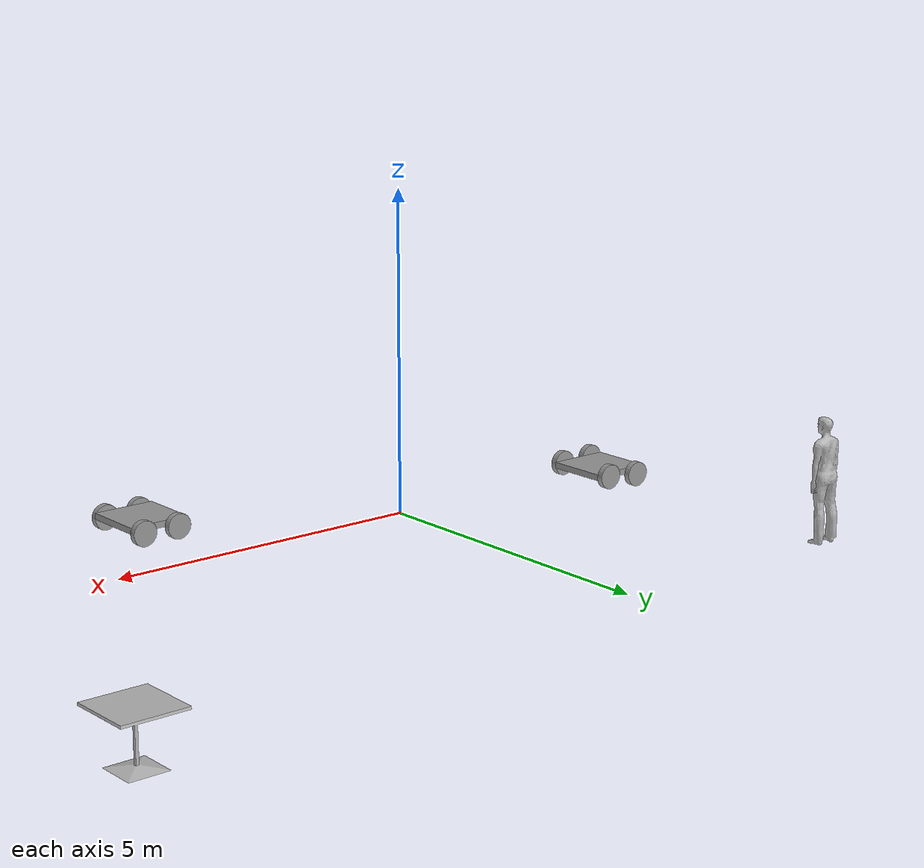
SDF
<?xml version='1.0'?>
<sdf version='1.6'>
  <model name='HumanoiRobot'>
    <link name='link_0'>
      <inertial>
        <mass>1</mass>
        <inertia>
          <ixx>0.166667</ixx>
          <ixy>0</ixy>
          <ixz>0</ixz>
          <iyy>0.166667</iyy>
          <iyz>0</iyz>
          <izz>0.166667</izz>
        </inertia>
        <pose frame=''>0 0 0 0 -0 0</pose>
      </inertial>
      <pose frame=''>-4.05276 0.106449 0.058335 0 -0 0</pose>
      <gravity>1</gravity>
      <self_collide>0</self_collide>
      <kinematic>0</kinematic>
      <enable_wind>0</enable_wind>
      <visual name='visual'>
        <pose frame=''>0 0 0 0 -0 0</pose>
        <geometry>
          <box>
            <size>1 1 0.1</size>
          </box>
        </geometry>
        <material>
          <lighting>1</lighting>
          <script>
            <uri>file://media/materials/scripts/gazebo.material</uri>
            <name>Gazebo/Grey</name>
          </script>
          <shader type='pixel'>
            <normal_map>__default__</normal_map>
          </shader>
          <ambient>0.3 0.3 0.3 1</ambient>
          <diffuse>0.7 0.7 0.7 1</diffuse>
          <specular>0.01 0.01 0.01 1</specular>
          <emissive>0 0 0 1</emissive>
        </material>
        <transparency>0</transparency>
        <cast_shadows>1</cast_shadows>
      </visual>
      <collision name='collision'>
        <laser_retro>0</laser_retro>
        <max_contacts>10</max_contacts>
        <pose frame=''>0 0 0 0 -0 0</pose>
        <geometry>
          <box>
            <size>1 1 0.1</size>
          </box>
        </geometry>
        <surface>
          <friction>
            <ode>
              <mu>1</mu>
              <mu2>1</mu2>
              <fdir1>0 0 0</fdir1>
              <slip1>0</slip1>
              <slip2>0</slip2>
            </ode>
            <torsional>
              <coefficient>1</coefficient>
              <patch_radius>0</patch_radius>
              <surface_radius>0</surface_radius>
              <use_patch_radius>1</use_patch_radius>
              <ode>
                <slip>0</slip>
              </ode>
            </torsional>
          </friction>
          <bounce>
            <restitution_coefficient>0</restitution_coefficient>
            <threshold>1e+06</threshold>
          </bounce>
          <contact>
            <collide_without_contact>0</collide_without_contact>
            <collide_without_contact_bitmask>1</collide_without_contact_bitmask>
            <collide_bitmask>1</collide_bitmask>
            <ode>
              <soft_cfm>0</soft_cfm>
              <soft_erp>0.2</soft_erp>
              <kp>1e+13</kp>
              <kd>1</kd>
              <max_vel>0.01</max_vel>
              <min_depth>0</min_depth>
            </ode>
            <bullet>
              <split_impulse>1</split_impulse>
              <split_impulse_penetration_threshold>-0.01</split_impulse_penetration_threshold>
              <soft_cfm>0</soft_cfm>
              <soft_erp>0.2</soft_erp>
              <kp>1e+13</kp>
              <kd>1</kd>
            </bullet>
          </contact>
        </surface>
      </collision>
    </link>
    <link name='link_0_clone'>
      <inertial>
        <mass>1</mass>
        <inertia>
          <ixx>0.166667</ixx>
          <ixy>0</ixy>
          <ixz>0</ixz>
          <iyy>0.166667</iyy>
          <iyz>0</iyz>
          <izz>0.166667</izz>
        </inertia>
        <pose frame=''>0 0 0 0 -0 0</pose>
      </inertial>
      <pose frame=''>3.25264 -2.202 0.058335 0 -0 0</pose>
      <gravity>1</gravity>
      <self_collide>0</self_collide>
      <kinematic>0</kinematic>
      <enable_wind>0</enable_wind>
      <visual name='visual'>
        <pose frame=''>0 0 0 0 -0 0</pose>
        <geometry>
          <box>
            <size>1 1 0.1</size>
          </box>
        </geometry>
        <material>
          <lighting>1</lighting>
          <script>
            <uri>file://media/materials/scripts/gazebo.material</uri>
            <name>Gazebo/Grey</name>
          </script>
          <shader type='pixel'>
            <normal_map>__default__</normal_map>
          </shader>
          <ambient>0.3 0.3 0.3 1</ambient>
          <diffuse>0.7 0.7 0.7 1</diffuse>
          <specular>0.01 0.01 0.01 1</specular>
          <emissive>0 0 0 1</emissive>
        </material>
        <transparency>0</transparency>
        <cast_shadows>1</cast_shadows>
      </visual>
      <collision name='collision'>
        <laser_retro>0</laser_retro>
        <max_contacts>10</max_contacts>
        <pose frame=''>0 0 0 0 -0 0</pose>
        <geometry>
          <box>
            <size>1 1 0.1</size>
          </box>
        </geometry>
        <surface>
          <friction>
            <ode>
              <mu>1</mu>
              <mu2>1</mu2>
              <fdir1>0 0 0</fdir1>
              <slip1>0</slip1>
              <slip2>0</slip2>
            </ode>
            <torsional>
              <coefficient>1</coefficient>
              <patch_radius>0</patch_radius>
              <surface_radius>0</surface_radius>
              <use_patch_radius>1</use_patch_radius>
              <ode>
                <slip>0</slip>
              </ode>
            </torsional>
          </friction>
          <bounce>
            <restitution_coefficient>0</restitution_coefficient>
            <threshold>1e+06</threshold>
          </bounce>
          <contact>
            <collide_without_contact>0</collide_without_contact>
            <collide_without_contact_bitmask>1</collide_without_contact_bitmask>
            <collide_bitmask>1</collide_bitmask>
            <ode>
              <soft_cfm>0</soft_cfm>
              <soft_erp>0.2</soft_erp>
              <kp>1e+13</kp>
              <kd>1</kd>
              <max_vel>0.01</max_vel>
              <min_depth>0</min_depth>
            </ode>
            <bullet>
              <split_impulse>1</split_impulse>
              <split_impulse_penetration_threshold>-0.01</split_impulse_penetration_threshold>
              <soft_cfm>0</soft_cfm>
              <soft_erp>0.2</soft_erp>
              <kp>1e+13</kp>
              <kd>1</kd>
            </bullet>
          </contact>
        </surface>
      </collision>
    </link>
    <link name='link_1'>
      <inertial>
        <mass>1</mass>
        <inertia>
          <ixx>0.145833</ixx>
          <ixy>0</ixy>
          <ixz>0</ixz>
          <iyy>0.145833</iyy>
          <iyz>0</iyz>
          <izz>0.125</izz>
        </inertia>
        <pose frame=''>0 0 0 0 -0 0</pose>
      </inertial>
      <pose frame=''>-4.35276 -0.44357 0.058335 1.5707 -0 0</pose>
      <gravity>1</gravity>
      <self_collide>0</self_collide>
      <kinematic>0</kinematic>
      <enable_wind>0</enable_wind>
      <visual name='visual'>
        <pose frame=''>0 0 0 0 -0 0</pose>
        <geometry>
          <cylinder>
            <radius>0.2</radius>
            <length>0.1</length>
          </cylinder>
        </geometry>
        <material>
          <lighting>1</lighting>
          <script>
            <uri>file://media/materials/scripts/gazebo.material</uri>
            <name>Gazebo/Grey</name>
          </script>
          <shader type='pixel'>
            <normal_map>__default__</normal_map>
          </shader>
          <ambient>0.3 0.3 0.3 1</ambient>
          <diffuse>0.7 0.7 0.7 1</diffuse>
          <specular>0.01 0.01 0.01 1</specular>
          <emissive>0 0 0 1</emissive>
        </material>
        <transparency>0</transparency>
        <cast_shadows>1</cast_shadows>
      </visual>
      <collision name='collision'>
        <laser_retro>0</laser_retro>
        <max_contacts>10</max_contacts>
        <pose frame=''>0 0 0 0 -0 0</pose>
        <geometry>
          <cylinder>
            <radius>0.2</radius>
            <length>0.1</length>
          </cylinder>
        </geometry>
        <surface>
          <friction>
            <ode>
              <mu>1</mu>
              <mu2>1</mu2>
              <fdir1>0 0 0</fdir1>
              <slip1>0</slip1>
              <slip2>0</slip2>
            </ode>
            <torsional>
              <coefficient>1</coefficient>
              <patch_radius>0</patch_radius>
              <surface_radius>0</surface_radius>
              <use_patch_radius>1</use_patch_radius>
              <ode>
                <slip>0</slip>
              </ode>
            </torsional>
          </friction>
          <bounce>
            <restitution_coefficient>0</restitution_coefficient>
            <threshold>1e+06</threshold>
          </bounce>
          <contact>
            <collide_without_contact>0</collide_without_contact>
            <collide_without_contact_bitmask>1</collide_without_contact_bitmask>
            <collide_bitmask>1</collide_bitmask>
            <ode>
              <soft_cfm>0</soft_cfm>
              <soft_erp>0.2</soft_erp>
              <kp>1e+13</kp>
              <kd>1</kd>
              <max_vel>0.01</max_vel>
              <min_depth>0</min_depth>
            </ode>
            <bullet>
              <split_impulse>1</split_impulse>
              <split_impulse_penetration_threshold>-0.01</split_impulse_penetration_threshold>
              <soft_cfm>0</soft_cfm>
              <soft_erp>0.2</soft_erp>
              <kp>1e+13</kp>
              <kd>1</kd>
            </bullet>
          </contact>
        </surface>
      </collision>
    </link>
    <link name='link_1_clone'>
      <inertial>
        <mass>1</mass>
        <inertia>
          <ixx>0.145833</ixx>
          <ixy>0</ixy>
          <ixz>0</ixz>
          <iyy>0.145833</iyy>
          <iyz>0</iyz>
          <izz>0.125</izz>
        </inertia>
        <pose frame=''>0 0 0 0 -0 0</pose>
      </inertial>
      <pose frame=''>-3.75276 0.656468 0.058335 1.5707 -0 0</pose>
      <gravity>1</gravity>
      <self_collide>0</self_collide>
      <kinematic>0</kinematic>
      <enable_wind>0</enable_wind>
      <visual name='visual'>
        <pose frame=''>0 0 0 0 -0 0</pose>
        <geometry>
          <cylinder>
            <radius>0.2</radius>
            <length>0.1</length>
          </cylinder>
        </geometry>
        <material>
          <lighting>1</lighting>
          <script>
            <uri>file://media/materials/scripts/gazebo.material</uri>
            <name>Gazebo/Grey</name>
          </script>
          <shader type='pixel'>
            <normal_map>__default__</normal_map>
          </shader>
          <ambient>0.3 0.3 0.3 1</ambient>
          <diffuse>0.7 0.7 0.7 1</diffuse>
          <specular>0.01 0.01 0.01 1</specular>
          <emissive>0 0 0 1</emissive>
        </material>
        <transparency>0</transparency>
        <cast_shadows>1</cast_shadows>
      </visual>
      <collision name='collision'>
        <laser_retro>0</laser_retro>
        <max_contacts>10</max_contacts>
        <pose frame=''>0 0 0 0 -0 0</pose>
        <geometry>
          <cylinder>
            <radius>0.2</radius>
            <length>0.1</length>
          </cylinder>
        </geometry>
        <surface>
          <friction>
            <ode>
              <mu>1</mu>
              <mu2>1</mu2>
              <fdir1>0 0 0</fdir1>
              <slip1>0</slip1>
              <slip2>0</slip2>
            </ode>
            <torsional>
              <coefficient>1</coefficient>
              <patch_radius>0</patch_radius>
              <surface_radius>0</surface_radius>
              <use_patch_radius>1</use_patch_radius>
              <ode>
                <slip>0</slip>
              </ode>
            </torsional>
          </friction>
          <bounce>
            <restitution_coefficient>0</restitution_coefficient>
            <threshold>1e+06</threshold>
          </bounce>
          <contact>
            <collide_without_contact>0</collide_without_contact>
            <collide_without_contact_bitmask>1</collide_without_contact_bitmask>
            <collide_bitmask>1</collide_bitmask>
            <ode>
              <soft_cfm>0</soft_cfm>
              <soft_erp>0.2</soft_erp>
              <kp>1e+13</kp>
              <kd>1</kd>
              <max_vel>0.01</max_vel>
              <min_depth>0</min_depth>
            </ode>
            <bullet>
              <split_impulse>1</split_impulse>
              <split_impulse_penetration_threshold>-0.01</split_impulse_penetration_threshold>
              <soft_cfm>0</soft_cfm>
              <soft_erp>0.2</soft_erp>
              <kp>1e+13</kp>
              <kd>1</kd>
            </bullet>
          </contact>
        </surface>
      </collision>
    </link>
    <link name='link_1_clone_0'>
      <inertial>
        <mass>1</mass>
        <inertia>
          <ixx>0.145833</ixx>
          <ixy>0</ixy>
          <ixz>0</ixz>
          <iyy>0.145833</iyy>
          <iyz>0</iyz>
          <izz>0.125</izz>
        </inertia>
        <pose frame=''>0 0 0 0 -0 0</pose>
      </inertial>
      <pose frame=''>-3.75276 -0.44357 0.058335 1.5707 -0 0</pose>
      <gravity>1</gravity>
      <self_collide>0</self_collide>
      <kinematic>0</kinematic>
      <enable_wind>0</enable_wind>
      <visual name='visual'>
        <pose frame=''>0 0 0 0 -0 0</pose>
        <geometry>
          <cylinder>
            <radius>0.2</radius>
            <length>0.1</length>
          </cylinder>
        </geometry>
        <material>
          <lighting>1</lighting>
          <script>
            <uri>file://media/materials/scripts/gazebo.material</uri>
            <name>Gazebo/Grey</name>
          </script>
          <shader type='pixel'>
            <normal_map>__default__</normal_map>
          </shader>
          <ambient>0.3 0.3 0.3 1</ambient>
          <diffuse>0.7 0.7 0.7 1</diffuse>
          <specular>0.01 0.01 0.01 1</specular>
          <emissive>0 0 0 1</emissive>
        </material>
        <transparency>0</transparency>
        <cast_shadows>1</cast_shadows>
      </visual>
      <collision name='collision'>
        <laser_retro>0</laser_retro>
        <max_contacts>10</max_contacts>
        <pose frame=''>0 0 0 0 -0 0</pose>
        <geometry>
          <cylinder>
            <radius>0.2</radius>
            <length>0.1</length>
          </cylinder>
        </geometry>
        <surface>
          <friction>
            <ode>
              <mu>1</mu>
              <mu2>1</mu2>
              <fdir1>0 0 0</fdir1>
              <slip1>0</slip1>
              <slip2>0</slip2>
            </ode>
            <torsional>
              <coefficient>1</coefficient>
              <patch_radius>0</patch_radius>
              <surface_radius>0</surface_radius>
              <use_patch_radius>1</use_patch_radius>
              <ode>
                <slip>0</slip>
              </ode>
            </torsional>
          </friction>
          <bounce>
            <restitution_coefficient>0</restitution_coefficient>
            <threshold>1e+06</threshold>
          </bounce>
          <contact>
            <collide_without_contact>0</collide_without_contact>
            <collide_without_contact_bitmask>1</collide_without_contact_bitmask>
            <collide_bitmask>1</collide_bitmask>
            <ode>
              <soft_cfm>0</soft_cfm>
              <soft_erp>0.2</soft_erp>
              <kp>1e+13</kp>
              <kd>1</kd>
              <max_vel>0.01</max_vel>
              <min_depth>0</min_depth>
            </ode>
            <bullet>
              <split_impulse>1</split_impulse>
              <split_impulse_penetration_threshold>-0.01</split_impulse_penetration_threshold>
              <soft_cfm>0</soft_cfm>
              <soft_erp>0.2</soft_erp>
              <kp>1e+13</kp>
              <kd>1</kd>
            </bullet>
          </contact>
        </surface>
      </collision>
    </link>
    <link name='link_1_clone_1'>
      <inertial>
        <mass>1</mass>
        <inertia>
          <ixx>0.145833</ixx>
          <ixy>0</ixy>
          <ixz>0</ixz>
          <iyy>0.145833</iyy>
          <iyz>0</iyz>
          <izz>0.125</izz>
        </inertia>
        <pose frame=''>0 0 0 0 -0 0</pose>
      </inertial>
      <pose frame=''>-4.35276 0.656468 -0.001669 1.5707 -0 0</pose>
      <gravity>1</gravity>
      <self_collide>0</self_collide>
      <kinematic>0</kinematic>
      <enable_wind>0</enable_wind>
      <visual name='visual'>
        <pose frame=''>0 0 0 0 -0 0</pose>
        <geometry>
          <cylinder>
            <radius>0.2</radius>
            <length>0.1</length>
          </cylinder>
        </geometry>
        <material>
          <lighting>1</lighting>
          <script>
            <uri>file://media/materials/scripts/gazebo.material</uri>
            <name>Gazebo/Grey</name>
          </script>
          <shader type='pixel'>
            <normal_map>__default__</normal_map>
          </shader>
          <ambient>0.3 0.3 0.3 1</ambient>
          <diffuse>0.7 0.7 0.7 1</diffuse>
          <specular>0.01 0.01 0.01 1</specular>
          <emissive>0 0 0 1</emissive>
        </material>
        <transparency>0</transparency>
        <cast_shadows>1</cast_shadows>
      </visual>
      <collision name='collision'>
        <laser_retro>0</laser_retro>
        <max_contacts>10</max_contacts>
        <pose frame=''>0 0 0 0 -0 0</pose>
        <geometry>
          <cylinder>
            <radius>0.2</radius>
            <length>0.1</length>
          </cylinder>
        </geometry>
        <surface>
          <friction>
            <ode>
              <mu>1</mu>
              <mu2>1</mu2>
              <fdir1>0 0 0</fdir1>
              <slip1>0</slip1>
              <slip2>0</slip2>
            </ode>
            <torsional>
              <coefficient>1</coefficient>
              <patch_radius>0</patch_radius>
              <surface_radius>0</surface_radius>
              <use_patch_radius>1</use_patch_radius>
              <ode>
                <slip>0</slip>
              </ode>
            </torsional>
          </friction>
          <bounce>
            <restitution_coefficient>0</restitution_coefficient>
            <threshold>1e+06</threshold>
          </bounce>
          <contact>
            <collide_without_contact>0</collide_without_contact>
            <collide_without_contact_bitmask>1</collide_without_contact_bitmask>
            <collide_bitmask>1</collide_bitmask>
            <ode>
              <soft_cfm>0</soft_cfm>
              <soft_erp>0.2</soft_erp>
              <kp>1e+13</kp>
              <kd>1</kd>
              <max_vel>0.01</max_vel>
              <min_depth>0</min_depth>
            </ode>
            <bullet>
              <split_impulse>1</split_impulse>
              <split_impulse_penetration_threshold>-0.01</split_impulse_penetration_threshold>
              <soft_cfm>0</soft_cfm>
              <soft_erp>0.2</soft_erp>
              <kp>1e+13</kp>
              <kd>1</kd>
            </bullet>
          </contact>
        </surface>
      </collision>
    </link>
    <link name='link_1_clone_1_clone_clone'>
      <inertial>
        <mass>1</mass>
        <inertia>
          <ixx>0.145833</ixx>
          <ixy>0</ixy>
          <ixz>0</ixz>
          <iyy>0.145833</iyy>
          <iyz>0</iyz>
          <izz>0.125</izz>
        </inertia>
        <pose frame=''>0 0 0 0 -0 0</pose>
      </inertial>
      <pose frame=''>3.55264 -2.75202 -0.00167 1.5707 -0 0</pose>
      <gravity>1</gravity>
      <self_collide>0</self_collide>
      <kinematic>0</kinematic>
      <enable_wind>0</enable_wind>
      <visual name='visual'>
        <pose frame=''>0 0 0 0 -0 0</pose>
        <geometry>
          <cylinder>
            <radius>0.2</radius>
            <length>0.1</length>
          </cylinder>
        </geometry>
        <material>
          <lighting>1</lighting>
          <script>
            <uri>file://media/materials/scripts/gazebo.material</uri>
            <name>Gazebo/Grey</name>
          </script>
          <shader type='pixel'>
            <normal_map>__default__</normal_map>
          </shader>
          <ambient>0.3 0.3 0.3 1</ambient>
          <diffuse>0.7 0.7 0.7 1</diffuse>
          <specular>0.01 0.01 0.01 1</specular>
          <emissive>0 0 0 1</emissive>
        </material>
        <transparency>0</transparency>
        <cast_shadows>1</cast_shadows>
      </visual>
      <collision name='collision'>
        <laser_retro>0</laser_retro>
        <max_contacts>10</max_contacts>
        <pose frame=''>0 0 0 0 -0 0</pose>
        <geometry>
          <cylinder>
            <radius>0.2</radius>
            <length>0.1</length>
          </cylinder>
        </geometry>
        <surface>
          <friction>
            <ode>
              <mu>1</mu>
              <mu2>1</mu2>
              <fdir1>0 0 0</fdir1>
              <slip1>0</slip1>
              <slip2>0</slip2>
            </ode>
            <torsional>
              <coefficient>1</coefficient>
              <patch_radius>0</patch_radius>
              <surface_radius>0</surface_radius>
              <use_patch_radius>1</use_patch_radius>
              <ode>
                <slip>0</slip>
              </ode>
            </torsional>
          </friction>
          <bounce>
            <restitution_coefficient>0</restitution_coefficient>
            <threshold>1e+06</threshold>
          </bounce>
          <contact>
            <collide_without_contact>0</collide_without_contact>
            <collide_without_contact_bitmask>1</collide_without_contact_bitmask>
            <collide_bitmask>1</collide_bitmask>
            <ode>
              <soft_cfm>0</soft_cfm>
              <soft_erp>0.2</soft_erp>
              <kp>1e+13</kp>
              <kd>1</kd>
              <max_vel>0.01</max_vel>
              <min_depth>0</min_depth>
            </ode>
            <bullet>
              <split_impulse>1</split_impulse>
              <split_impulse_penetration_threshold>-0.01</split_impulse_penetration_threshold>
              <soft_cfm>0</soft_cfm>
              <soft_erp>0.2</soft_erp>
              <kp>1e+13</kp>
              <kd>1</kd>
            </bullet>
          </contact>
        </surface>
      </collision>
    </link>
    <link name='link_1_clone_1_clone_clone_0'>
      <inertial>
        <mass>1</mass>
        <inertia>
          <ixx>0.145833</ixx>
          <ixy>0</ixy>
          <ixz>0</ixz>
          <iyy>0.145833</iyy>
          <iyz>0</iyz>
          <izz>0.125</izz>
        </inertia>
        <pose frame=''>0 0 0 0 -0 0</pose>
      </inertial>
      <pose frame=''>2.95263 -2.75202 -0.00167 1.5707 -0 0</pose>
      <gravity>1</gravity>
      <self_collide>0</self_collide>
      <kinematic>0</kinematic>
      <enable_wind>0</enable_wind>
      <visual name='visual'>
        <pose frame=''>0 0 0 0 -0 0</pose>
        <geometry>
          <cylinder>
            <radius>0.2</radius>
            <length>0.1</length>
          </cylinder>
        </geometry>
        <material>
          <lighting>1</lighting>
          <script>
            <uri>file://media/materials/scripts/gazebo.material</uri>
            <name>Gazebo/Grey</name>
          </script>
          <shader type='pixel'>
            <normal_map>__default__</normal_map>
          </shader>
          <ambient>0.3 0.3 0.3 1</ambient>
          <diffuse>0.7 0.7 0.7 1</diffuse>
          <specular>0.01 0.01 0.01 1</specular>
          <emissive>0 0 0 1</emissive>
        </material>
        <transparency>0</transparency>
        <cast_shadows>1</cast_shadows>
      </visual>
      <collision name='collision'>
        <laser_retro>0</laser_retro>
        <max_contacts>10</max_contacts>
        <pose frame=''>0 0 0 0 -0 0</pose>
        <geometry>
          <cylinder>
            <radius>0.2</radius>
            <length>0.1</length>
          </cylinder>
        </geometry>
        <surface>
          <friction>
            <ode>
              <mu>1</mu>
              <mu2>1</mu2>
              <fdir1>0 0 0</fdir1>
              <slip1>0</slip1>
              <slip2>0</slip2>
            </ode>
            <torsional>
              <coefficient>1</coefficient>
              <patch_radius>0</patch_radius>
              <surface_radius>0</surface_radius>
              <use_patch_radius>1</use_patch_radius>
              <ode>
                <slip>0</slip>
              </ode>
            </torsional>
          </friction>
          <bounce>
            <restitution_coefficient>0</restitution_coefficient>
            <threshold>1e+06</threshold>
          </bounce>
          <contact>
            <collide_without_contact>0</collide_without_contact>
            <collide_without_contact_bitmask>1</collide_without_contact_bitmask>
            <collide_bitmask>1</collide_bitmask>
            <ode>
              <soft_cfm>0</soft_cfm>
              <soft_erp>0.2</soft_erp>
              <kp>1e+13</kp>
              <kd>1</kd>
              <max_vel>0.01</max_vel>
              <min_depth>0</min_depth>
            </ode>
            <bullet>
              <split_impulse>1</split_impulse>
              <split_impulse_penetration_threshold>-0.01</split_impulse_penetration_threshold>
              <soft_cfm>0</soft_cfm>
              <soft_erp>0.2</soft_erp>
              <kp>1e+13</kp>
              <kd>1</kd>
            </bullet>
          </contact>
        </surface>
      </collision>
    </link>
    <link name='link_1_clone_1_clone_clone_1'>
      <inertial>
        <mass>1</mass>
        <inertia>
          <ixx>0.145833</ixx>
          <ixy>0</ixy>
          <ixz>0</ixz>
          <iyy>0.145833</iyy>
          <iyz>0</iyz>
          <izz>0.125</izz>
        </inertia>
        <pose frame=''>0 0 0 0 -0 0</pose>
      </inertial>
      <pose frame=''>3.55264 -1.65198 -0.00167 1.5707 -0 0</pose>
      <gravity>1</gravity>
      <self_collide>0</self_collide>
      <kinematic>0</kinematic>
      <enable_wind>0</enable_wind>
      <visual name='visual'>
        <pose frame=''>0 0 0 0 -0 0</pose>
        <geometry>
          <cylinder>
            <radius>0.2</radius>
            <length>0.1</length>
          </cylinder>
        </geometry>
        <material>
          <lighting>1</lighting>
          <script>
            <uri>file://media/materials/scripts/gazebo.material</uri>
            <name>Gazebo/Grey</name>
          </script>
          <shader type='pixel'>
            <normal_map>__default__</normal_map>
          </shader>
          <ambient>0.3 0.3 0.3 1</ambient>
          <diffuse>0.7 0.7 0.7 1</diffuse>
          <specular>0.01 0.01 0.01 1</specular>
          <emissive>0 0 0 1</emissive>
        </material>
        <transparency>0</transparency>
        <cast_shadows>1</cast_shadows>
      </visual>
      <collision name='collision'>
        <laser_retro>0</laser_retro>
        <max_contacts>10</max_contacts>
        <pose frame=''>0 0 0 0 -0 0</pose>
        <geometry>
          <cylinder>
            <radius>0.2</radius>
            <length>0.1</length>
          </cylinder>
        </geometry>
        <surface>
          <friction>
            <ode>
              <mu>1</mu>
              <mu2>1</mu2>
              <fdir1>0 0 0</fdir1>
              <slip1>0</slip1>
              <slip2>0</slip2>
            </ode>
            <torsional>
              <coefficient>1</coefficient>
              <patch_radius>0</patch_radius>
              <surface_radius>0</surface_radius>
              <use_patch_radius>1</use_patch_radius>
              <ode>
                <slip>0</slip>
              </ode>
            </torsional>
          </friction>
          <bounce>
            <restitution_coefficient>0</restitution_coefficient>
            <threshold>1e+06</threshold>
          </bounce>
          <contact>
            <collide_without_contact>0</collide_without_contact>
            <collide_without_contact_bitmask>1</collide_without_contact_bitmask>
            <collide_bitmask>1</collide_bitmask>
            <ode>
              <soft_cfm>0</soft_cfm>
              <soft_erp>0.2</soft_erp>
              <kp>1e+13</kp>
              <kd>1</kd>
              <max_vel>0.01</max_vel>
              <min_depth>0</min_depth>
            </ode>
            <bullet>
              <split_impulse>1</split_impulse>
              <split_impulse_penetration_threshold>-0.01</split_impulse_penetration_threshold>
              <soft_cfm>0</soft_cfm>
              <soft_erp>0.2</soft_erp>
              <kp>1e+13</kp>
              <kd>1</kd>
            </bullet>
          </contact>
        </surface>
      </collision>
    </link>
    <link name='link_1_clone_1_clone_clone_1_clone'>
      <inertial>
        <mass>1</mass>
        <inertia>
          <ixx>0.145833</ixx>
          <ixy>0</ixy>
          <ixz>0</ixz>
          <iyy>0.145833</iyy>
          <iyz>0</iyz>
          <izz>0.125</izz>
        </inertia>
        <pose frame=''>0 0 0 0 -0 0</pose>
      </inertial>
      <pose frame=''>2.95264 -1.65198 -0.00167 1.5707 -0 0</pose>
      <gravity>1</gravity>
      <self_collide>0</self_collide>
      <kinematic>0</kinematic>
      <enable_wind>0</enable_wind>
      <visual name='visual'>
        <pose frame=''>0 0 0 0 -0 0</pose>
        <geometry>
          <cylinder>
            <radius>0.2</radius>
            <length>0.1</length>
          </cylinder>
        </geometry>
        <material>
          <lighting>1</lighting>
          <script>
            <uri>file://media/materials/scripts/gazebo.material</uri>
            <name>Gazebo/Grey</name>
          </script>
          <shader type='pixel'>
            <normal_map>__default__</normal_map>
          </shader>
          <ambient>0.3 0.3 0.3 1</ambient>
          <diffuse>0.7 0.7 0.7 1</diffuse>
          <specular>0.01 0.01 0.01 1</specular>
          <emissive>0 0 0 1</emissive>
        </material>
        <transparency>0</transparency>
        <cast_shadows>1</cast_shadows>
      </visual>
      <collision name='collision'>
        <laser_retro>0</laser_retro>
        <max_contacts>10</max_contacts>
        <pose frame=''>0 0 0 0 -0 0</pose>
        <geometry>
          <cylinder>
            <radius>0.2</radius>
            <length>0.1</length>
          </cylinder>
        </geometry>
        <surface>
          <friction>
            <ode>
              <mu>1</mu>
              <mu2>1</mu2>
              <fdir1>0 0 0</fdir1>
              <slip1>0</slip1>
              <slip2>0</slip2>
            </ode>
            <torsional>
              <coefficient>1</coefficient>
              <patch_radius>0</patch_radius>
              <surface_radius>0</surface_radius>
              <use_patch_radius>1</use_patch_radius>
              <ode>
                <slip>0</slip>
              </ode>
            </torsional>
          </friction>
          <bounce>
            <restitution_coefficient>0</restitution_coefficient>
            <threshold>1e+06</threshold>
          </bounce>
          <contact>
            <collide_without_contact>0</collide_without_contact>
            <collide_without_contact_bitmask>1</collide_without_contact_bitmask>
            <collide_bitmask>1</collide_bitmask>
            <ode>
              <soft_cfm>0</soft_cfm>
              <soft_erp>0.2</soft_erp>
              <kp>1e+13</kp>
              <kd>1</kd>
              <max_vel>0.01</max_vel>
              <min_depth>0</min_depth>
            </ode>
            <bullet>
              <split_impulse>1</split_impulse>
              <split_impulse_penetration_threshold>-0.01</split_impulse_penetration_threshold>
              <soft_cfm>0</soft_cfm>
              <soft_erp>0.2</soft_erp>
              <kp>1e+13</kp>
              <kd>1</kd>
            </bullet>
          </contact>
        </surface>
      </collision>
    </link>
    <model name='cafe_table'>
      <static>1</static>
      <link name='link'>
        <collision name='surface'>
          <pose frame=''>0 0 0.755 0 -0 0</pose>
          <geometry>
            <box>
              <size>0.913 0.913 0.04</size>
            </box>
          </geometry>
        </collision>
        <collision name='column'>
          <pose frame=''>0 0 0.37 0 -0 0</pose>
          <geometry>
            <box>
              <size>0.042 0.042 0.74</size>
            </box>
          </geometry>
        </collision>
        <collision name='base'>
          <pose frame=''>0 0 0.02 0 -0 0</pose>
          <geometry>
            <box>
              <size>0.56 0.56 0.04</size>
            </box>
          </geometry>
        </collision>
        <visual name='visual'>
          <geometry>
            <mesh>
              <uri>model://cafe_table/meshes/cafe_table.dae</uri>
            </mesh>
          </geometry>
        </visual>
      </link>
      <pose frame=''>8.15394 5.56169 -0.141665 0 -0 0</pose>
    </model>
    <model name='person_standing'>
      <link name='link'>
        <inertial>
          <pose frame=''>0 -0.1 0.95 0 -0 0</pose>
          <mass>80</mass>
          <inertia>
            <ixx>24.88</ixx>
            <ixy>0</ixy>
            <ixz>0</ixz>
            <iyy>25.73</iyy>
            <iyz>0</iyz>
            <izz>2.48</izz>
          </inertia>
        </inertial>
        <collision name='bottom'>
          <pose frame=''>0 -0.1 0.01 0 -0 0</pose>
          <geometry>
            <box>
              <size>0.5 0.35 0.02</size>
            </box>
          </geometry>
        </collision>
        <collision name='person'>
          <pose frame=''>0 0 0.02 0.04 -0 0</pose>
          <geometry>
            <mesh>
              <uri>model://person_standing/meshes/standing.dae</uri>
            </mesh>
          </geometry>
        </collision>
        <visual name='visual'>
          <pose frame=''>0 0 0.02 0.04 -0 0</pose>
          <geometry>
            <mesh>
              <uri>model://person_standing/meshes/standing.dae</uri>
            </mesh>
          </geometry>
        </visual>
      </link>
      <pose frame=''>-4.1533 4.91607 -0.141665 0 -0 0</pose>
    </model>
    <joint name='link_0_JOINT_0' type='revolute'>
      <parent>link_0</parent>
      <child>link_1_clone</child>
      <pose frame=''>0 0 0 0 -0 0</pose>
      <axis>
        <xyz>1 0 0</xyz>
        <use_parent_model_frame>0</use_parent_model_frame>
        <limit>
          <lower>-1.79769e+308</lower>
          <upper>1.79769e+308</upper>
          <effort>-1</effort>
          <velocity>-1</velocity>
        </limit>
        <dynamics>
          <spring_reference>0</spring_reference>
          <spring_stiffness>0</spring_stiffness>
          <damping>0</damping>
        </dynamics>
      </axis>
      <physics>
        <ode>
          <limit>
            <cfm>0</cfm>
            <erp>0.2</erp>
          </limit>
          <suspension>
            <cfm>0</cfm>
            <erp>0.2</erp>
          </suspension>
        </ode>
      </physics>
    </joint>
    <joint name='link_0_JOINT_1' type='revolute'>
      <parent>link_0</parent>
      <child>link_1_clone_1</child>
      <pose frame=''>0 0 0 0 -0 0</pose>
      <axis>
        <xyz>1 0 0</xyz>
        <use_parent_model_frame>0</use_parent_model_frame>
        <limit>
          <lower>-1.79769e+308</lower>
          <upper>1.79769e+308</upper>
          <effort>-1</effort>
          <velocity>-1</velocity>
        </limit>
        <dynamics>
          <spring_reference>0</spring_reference>
          <spring_stiffness>0</spring_stiffness>
          <damping>0</damping>
        </dynamics>
      </axis>
      <physics>
        <ode>
          <limit>
            <cfm>0</cfm>
            <erp>0.2</erp>
          </limit>
          <suspension>
            <cfm>0</cfm>
            <erp>0.2</erp>
          </suspension>
        </ode>
      </physics>
    </joint>
    <joint name='link_0_JOINT_2' type='revolute'>
      <parent>link_0</parent>
      <child>link_1</child>
      <pose frame=''>0 0 0 0 -0 0</pose>
      <axis>
        <xyz>1 0 0</xyz>
        <use_parent_model_frame>0</use_parent_model_frame>
        <limit>
          <lower>-1.79769e+308</lower>
          <upper>1.79769e+308</upper>
          <effort>-1</effort>
          <velocity>-1</velocity>
        </limit>
        <dynamics>
          <spring_reference>0</spring_reference>
          <spring_stiffness>0</spring_stiffness>
          <damping>0</damping>
        </dynamics>
      </axis>
      <physics>
        <ode>
          <limit>
            <cfm>0</cfm>
            <erp>0.2</erp>
          </limit>
          <suspension>
            <cfm>0</cfm>
            <erp>0.2</erp>
          </suspension>
        </ode>
      </physics>
    </joint>
    <joint name='link_0_JOINT_3' type='revolute'>
      <parent>link_0</parent>
      <child>link_1_clone_0</child>
      <pose frame=''>0 0 0 0 -0 0</pose>
      <axis>
        <xyz>1 0 0</xyz>
        <use_parent_model_frame>0</use_parent_model_frame>
        <limit>
          <lower>-1.79769e+308</lower>
          <upper>1.79769e+308</upper>
          <effort>-1</effort>
          <velocity>-1</velocity>
        </limit>
        <dynamics>
          <spring_reference>0</spring_reference>
          <spring_stiffness>0</spring_stiffness>
          <damping>0</damping>
        </dynamics>
      </axis>
      <physics>
        <ode>
          <limit>
            <cfm>0</cfm>
            <erp>0.2</erp>
          </limit>
          <suspension>
            <cfm>0</cfm>
            <erp>0.2</erp>
          </suspension>
        </ode>
      </physics>
    </joint>
    <joint name='link_0_clone_JOINT_5' type='revolute'>
      <parent>link_0_clone</parent>
      <child>link_1_clone_1_clone_clone_0</child>
      <pose frame=''>0 0 0 0 -0 0</pose>
      <axis>
        <xyz>1 0 0</xyz>
        <use_parent_model_frame>0</use_parent_model_frame>
        <limit>
          <lower>-1.79769e+308</lower>
          <upper>1.79769e+308</upper>
          <effort>-1</effort>
          <velocity>-1</velocity>
        </limit>
        <dynamics>
          <spring_reference>0</spring_reference>
          <spring_stiffness>0</spring_stiffness>
          <damping>0</damping>
        </dynamics>
      </axis>
      <physics>
        <ode>
          <limit>
            <cfm>0</cfm>
            <erp>0.2</erp>
          </limit>
          <suspension>
            <cfm>0</cfm>
            <erp>0.2</erp>
          </suspension>
        </ode>
      </physics>
    </joint>
    <joint name='link_0_clone_JOINT_6' type='revolute'>
      <parent>link_0_clone</parent>
      <child>link_1_clone_1_clone_clone</child>
      <pose frame=''>0 0 0 0 -0 0</pose>
      <axis>
        <xyz>1 0 0</xyz>
        <use_parent_model_frame>0</use_parent_model_frame>
        <limit>
          <lower>-1.79769e+308</lower>
          <upper>1.79769e+308</upper>
          <effort>-1</effort>
          <velocity>-1</velocity>
        </limit>
        <dynamics>
          <spring_reference>0</spring_reference>
          <spring_stiffness>0</spring_stiffness>
          <damping>0</damping>
        </dynamics>
      </axis>
      <physics>
        <ode>
          <limit>
            <cfm>0</cfm>
            <erp>0.2</erp>
          </limit>
          <suspension>
            <cfm>0</cfm>
            <erp>0.2</erp>
          </suspension>
        </ode>
      </physics>
    </joint>
    <joint name='link_0_clone_JOINT_8' type='revolute'>
      <parent>link_0_clone</parent>
      <child>link_1_clone_1_clone_clone_1_clone</child>
      <pose frame=''>0 0 0 0 -0 0</pose>
      <axis>
        <xyz>1 0 0</xyz>
        <use_parent_model_frame>0</use_parent_model_frame>
        <limit>
          <lower>-1.79769e+308</lower>
          <upper>1.79769e+308</upper>
          <effort>-1</effort>
          <velocity>-1</velocity>
        </limit>
        <dynamics>
          <spring_reference>0</spring_reference>
          <spring_stiffness>0</spring_stiffness>
          <damping>0</damping>
        </dynamics>
      </axis>
      <physics>
        <ode>
          <limit>
            <cfm>0</cfm>
            <erp>0.2</erp>
          </limit>
          <suspension>
            <cfm>0</cfm>
            <erp>0.2</erp>
          </suspension>
        </ode>
      </physics>
    </joint>
    <joint name='link_0_clone_JOINT_9' type='revolute'>
      <parent>link_0_clone</parent>
      <child>link_1_clone_1_clone_clone_1</child>
      <pose frame=''>0 0 0 0 -0 0</pose>
      <axis>
        <xyz>1 0 0</xyz>
        <use_parent_model_frame>0</use_parent_model_frame>
        <limit>
          <lower>-1.79769e+308</lower>
          <upper>1.79769e+308</upper>
          <effort>-1</effort>
          <velocity>-1</velocity>
        </limit>
        <dynamics>
          <spring_reference>0</spring_reference>
          <spring_stiffness>0</spring_stiffness>
          <damping>0</damping>
        </dynamics>
      </axis>
      <physics>
        <ode>
          <limit>
            <cfm>0</cfm>
            <erp>0.2</erp>
          </limit>
          <suspension>
            <cfm>0</cfm>
            <erp>0.2</erp>
          </suspension>
        </ode>
      </physics>
    </joint>
    <static>0</static>
    <allow_auto_disable>1</allow_auto_disable>
  </model>
</sdf>
